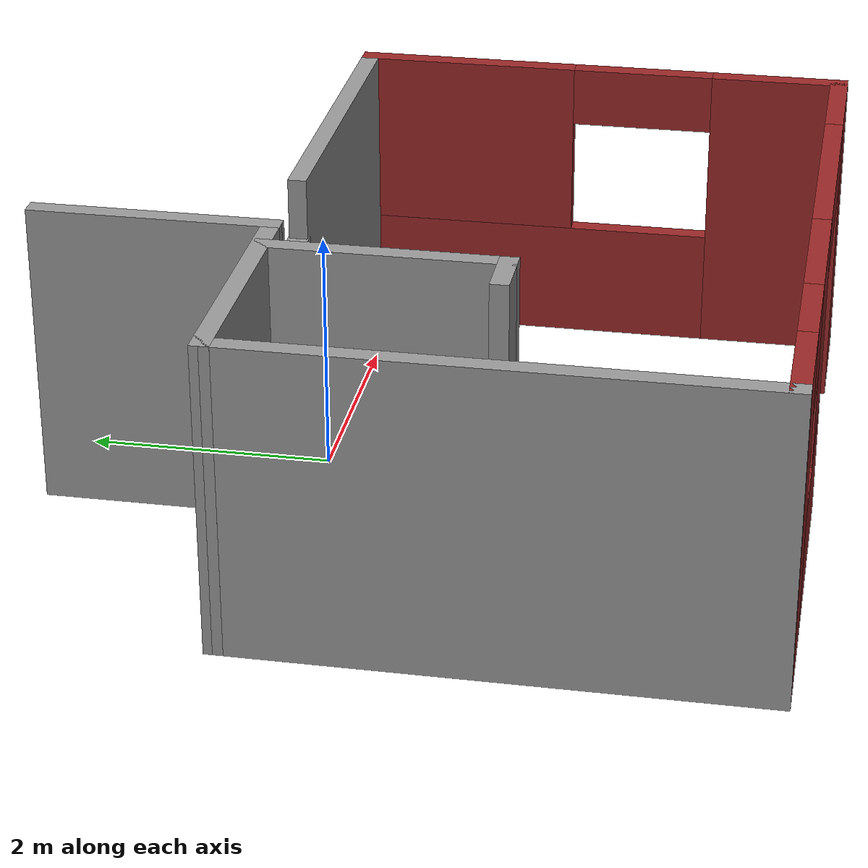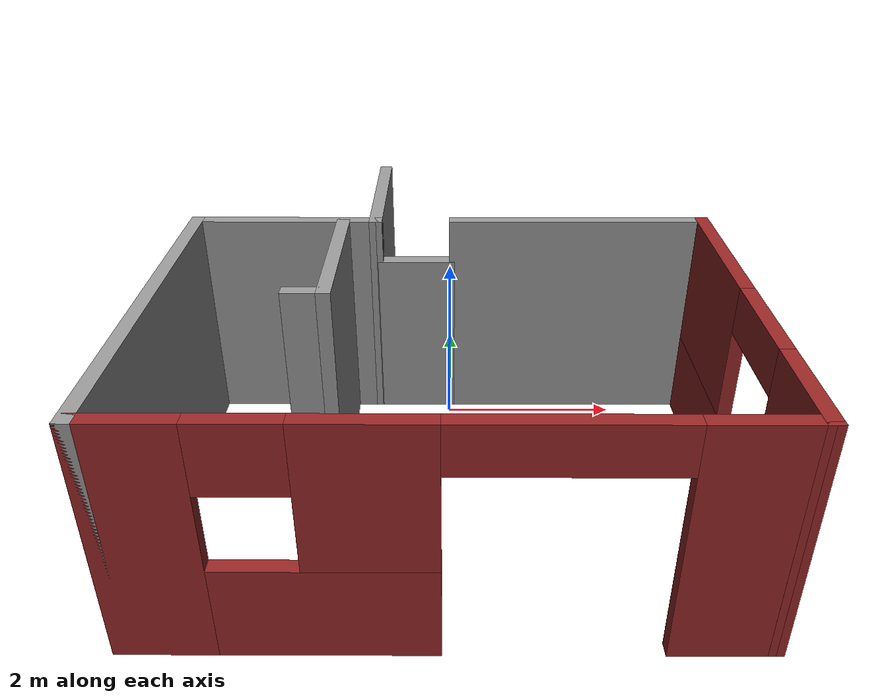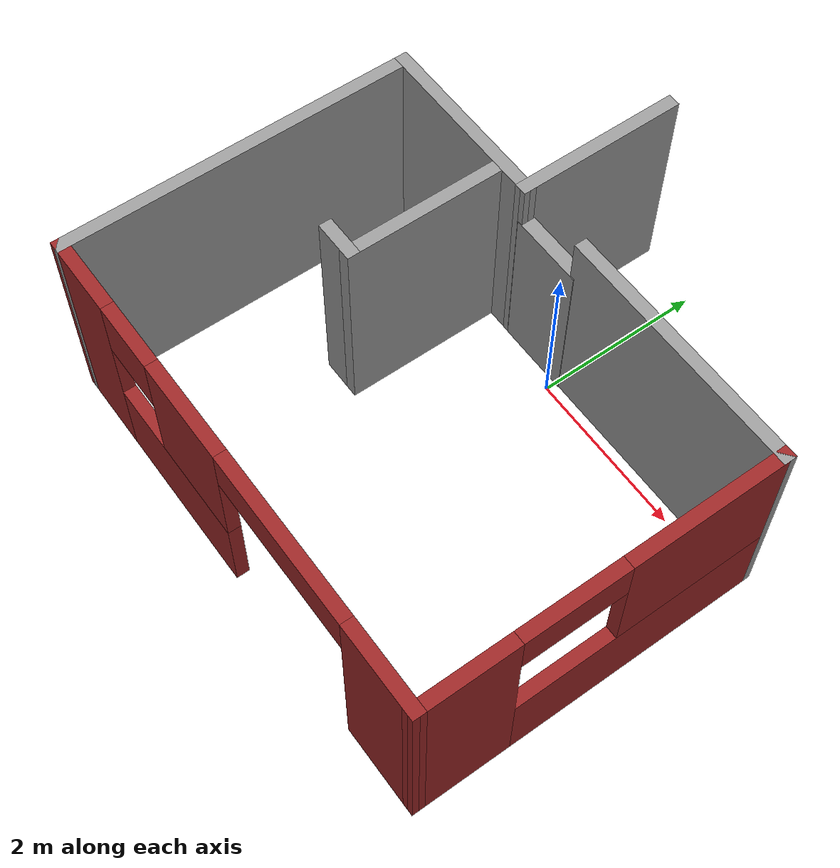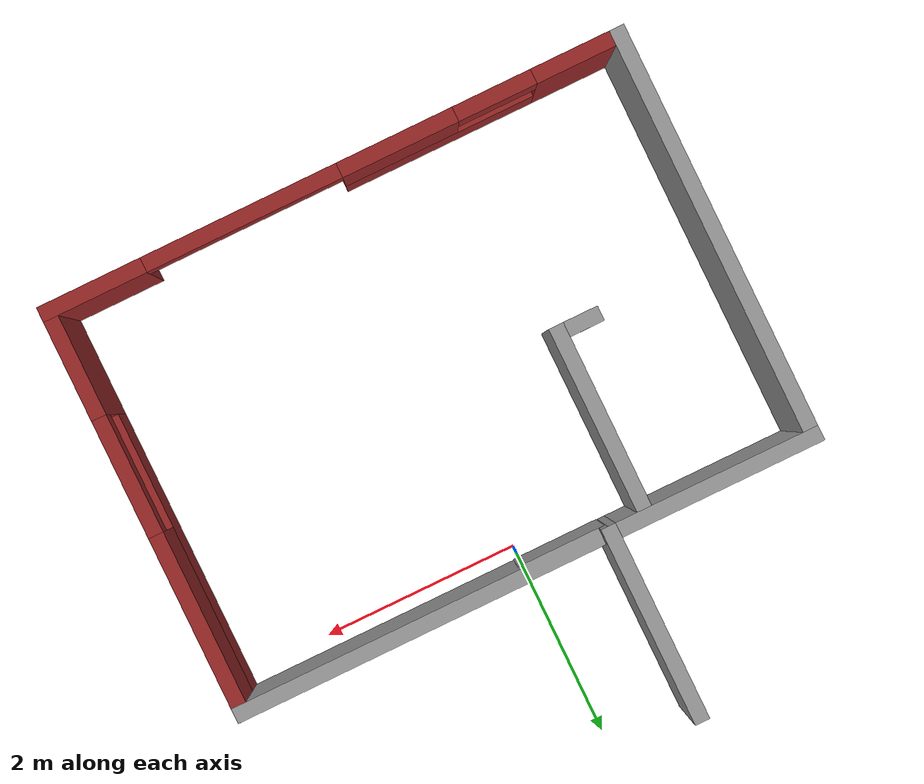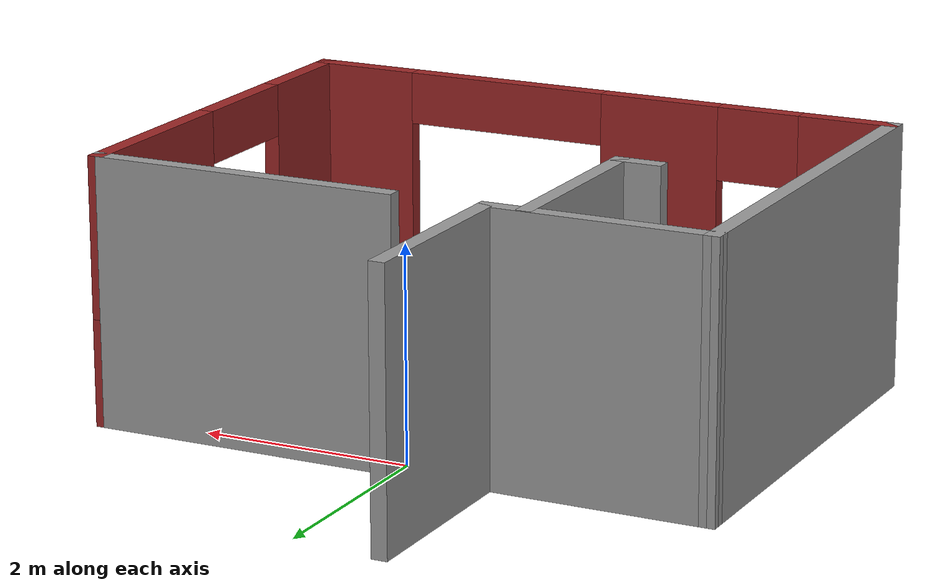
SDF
<sdf version="1.6">
 <model name="myroom">
  <link name="Door_6">
   <pose>-0.397625 0.202673 0 0 -0 0</pose>
   <visual name="Door_6_Visual">
    <pose>0 0 1 0 -0 0</pose>
    <geometry><box><size>0.9 0.17 2</size></box></geometry>
    <material>
     <script><uri>file://media/materials/scripts/gazebo.material</uri><name>Gazebo/Grey</name></script>
     <ambient>0.3 0.3 0.3 1</ambient>
     <diffuse>0.7 0.7 0.7 1</diffuse>
     <specular>0.01 0.01 0.01 1</specular>
     <emissive>0 0 0 1</emissive>
    </material>
   </visual>
   <collision name="Door_6_Collision">
    <pose>0 0 1 0 -0 0</pose>
    <geometry><box><size>0.9 0.17 2</size></box></geometry>
    <surface>
     <friction>
      <ode><mu>1</mu><mu2>1</mu2><fdir1>0 0 0</fdir1><slip1>0</slip1><slip2>0</slip2></ode>
      <torsional>
       <coefficient>1</coefficient>
       <patch_radius>0</patch_radius>
       <surface_radius>0</surface_radius>
       <use_patch_radius>1</use_patch_radius>
       <ode><slip>0</slip></ode>
      </torsional>
     </friction>
     <bounce><restitution_coefficient>0</restitution_coefficient><threshold>1e+06</threshold></bounce>
     <contact>
      <collide_without_contact>0</collide_without_contact>
      <collide_without_contact_bitmask>1</collide_without_contact_bitmask>
      <collide_bitmask>1</collide_bitmask>
      <ode>
       <soft_cfm>0</soft_cfm>
       <soft_erp>0.2</soft_erp>
       <kp>1e+13</kp>
       <kd>1</kd>
       <max_vel>0.01</max_vel>
       <min_depth>0</min_depth>
      </ode>
      <bullet>
       <split_impulse>1</split_impulse>
       <split_impulse_penetration_threshold>-0.01</split_impulse_penetration_threshold>
       <soft_cfm>0</soft_cfm>
       <soft_erp>0.2</soft_erp>
       <kp>1e+13</kp>
       <kd>1</kd>
      </bullet>
     </contact>
    </surface>
   </collision>
  </link>
  <link name="Wall_28">
   <pose>-0.859282 1.12126 0 0 0 -1.5708</pose>
   <visual name="Wall_28_Visual">
    <pose>0 0 1.25 0 -0 0</pose>
    <geometry><box><size>2 0.15 2.5</size></box></geometry>
    <material>
     <script><uri>file://media/materials/scripts/gazebo.material</uri><name>Gazebo/Grey</name></script>
     <ambient>1 1 1 1</ambient>
     <diffuse>0.7 0.7 0.7 1</diffuse>
     <specular>0.01 0.01 0.01 1</specular>
     <emissive>0 0 0 1</emissive>
    </material>
    <meta><layer>0</layer></meta>
   </visual>
   <collision name="Wall_28_Collision">
    <pose>0 0 1.25 0 -0 0</pose>
    <geometry><box><size>2 0.15 2.5</size></box></geometry>
    <surface>
     <friction>
      <ode><mu>1</mu><mu2>1</mu2><fdir1>0 0 0</fdir1><slip1>0</slip1><slip2>0</slip2></ode>
      <torsional>
       <coefficient>1</coefficient>
       <patch_radius>0</patch_radius>
       <surface_radius>0</surface_radius>
       <use_patch_radius>1</use_patch_radius>
       <ode><slip>0</slip></ode>
      </torsional>
     </friction>
     <bounce><restitution_coefficient>0</restitution_coefficient><threshold>1e+06</threshold></bounce>
     <contact>
      <collide_without_contact>0</collide_without_contact>
      <collide_without_contact_bitmask>1</collide_without_contact_bitmask>
      <collide_bitmask>1</collide_bitmask>
      <ode>
       <soft_cfm>0</soft_cfm>
       <soft_erp>0.2</soft_erp>
       <kp>1e+13</kp>
       <kd>1</kd>
       <max_vel>0.01</max_vel>
       <min_depth>0</min_depth>
      </ode>
      <bullet>
       <split_impulse>1</split_impulse>
       <split_impulse_penetration_threshold>-0.01</split_impulse_penetration_threshold>
       <soft_cfm>0</soft_cfm>
       <soft_erp>0.2</soft_erp>
       <kp>1e+13</kp>
       <kd>1</kd>
      </bullet>
     </contact>
    </surface>
   </collision>
  </link>
  <link name="Wall_36">
   <pose>1.49313 0.201483 0 0 -0 3.14159</pose>
   <visual name="Wall_36_Visual">
    <pose>0 0 1.25 0 -0 0</pose>
    <geometry><box><size>3 0.15 2.5</size></box></geometry>
    <material>
     <script><uri>file://media/materials/scripts/gazebo.material</uri><name>Gazebo/Grey</name></script>
     <ambient>1 1 1 1</ambient>
     <diffuse>0.7 0.7 0.7 1</diffuse>
     <specular>0.01 0.01 0.01 1</specular>
     <emissive>0 0 0 1</emissive>
    </material>
    <meta><layer>0</layer></meta>
   </visual>
   <collision name="Wall_36_Collision">
    <pose>0 0 1.25 0 -0 0</pose>
    <geometry><box><size>3 0.15 2.5</size></box></geometry>
    <surface>
     <friction>
      <ode><mu>1</mu><mu2>1</mu2><fdir1>0 0 0</fdir1><slip1>0</slip1><slip2>0</slip2></ode>
      <torsional>
       <coefficient>1</coefficient>
       <patch_radius>0</patch_radius>
       <surface_radius>0</surface_radius>
       <use_patch_radius>1</use_patch_radius>
       <ode><slip>0</slip></ode>
      </torsional>
     </friction>
     <bounce><restitution_coefficient>0</restitution_coefficient><threshold>1e+06</threshold></bounce>
     <contact>
      <collide_without_contact>0</collide_without_contact>
      <collide_without_contact_bitmask>1</collide_without_contact_bitmask>
      <collide_bitmask>1</collide_bitmask>
      <ode>
       <soft_cfm>0</soft_cfm>
       <soft_erp>0.2</soft_erp>
       <kp>1e+13</kp>
       <kd>1</kd>
       <max_vel>0.01</max_vel>
       <min_depth>0</min_depth>
      </ode>
      <bullet>
       <split_impulse>1</split_impulse>
       <split_impulse_penetration_threshold>-0.01</split_impulse_penetration_threshold>
       <soft_cfm>0</soft_cfm>
       <soft_erp>0.2</soft_erp>
       <kp>1e+13</kp>
       <kd>1</kd>
      </bullet>
     </contact>
    </surface>
   </collision>
  </link>
  <link name="Wall_42">
   <pose>-1.89215 0.197452 0 0 0 -0.001151</pose>
   <visual name="Wall_42_Visual">
    <pose>0 0 1.25 0 -0 0</pose>
    <geometry><box><size>2.21574 0.15 2.5</size></box></geometry>
    <material>
     <script><uri>file://media/materials/scripts/gazebo.material</uri><name>Gazebo/Grey</name></script>
     <ambient>1 1 1 1</ambient>
     <diffuse>0.7 0.7 0.7 1</diffuse>
     <specular>0.01 0.01 0.01 1</specular>
     <emissive>0 0 0 1</emissive>
    </material>
    <meta><layer>0</layer></meta>
   </visual>
   <collision name="Wall_42_Collision">
    <pose>0 0 1.25 0 -0 0</pose>
    <geometry><box><size>2.21574 0.15 2.5</size></box></geometry>
    <surface>
     <friction>
      <ode><mu>1</mu><mu2>1</mu2><fdir1>0 0 0</fdir1><slip1>0</slip1><slip2>0</slip2></ode>
      <torsional>
       <coefficient>1</coefficient>
       <patch_radius>0</patch_radius>
       <surface_radius>0</surface_radius>
       <use_patch_radius>1</use_patch_radius>
       <ode><slip>0</slip></ode>
      </torsional>
     </friction>
     <bounce><restitution_coefficient>0</restitution_coefficient><threshold>1e+06</threshold></bounce>
     <contact>
      <collide_without_contact>0</collide_without_contact>
      <collide_without_contact_bitmask>1</collide_without_contact_bitmask>
      <collide_bitmask>1</collide_bitmask>
      <ode>
       <soft_cfm>0</soft_cfm>
       <soft_erp>0.2</soft_erp>
       <kp>1e+13</kp>
       <kd>1</kd>
       <max_vel>0.01</max_vel>
       <min_depth>0</min_depth>
      </ode>
      <bullet>
       <split_impulse>1</split_impulse>
       <split_impulse_penetration_threshold>-0.01</split_impulse_penetration_threshold>
       <soft_cfm>0</soft_cfm>
       <soft_erp>0.2</soft_erp>
       <kp>1e+13</kp>
       <kd>1</kd>
      </bullet>
     </contact>
    </surface>
   </collision>
  </link>
  <link name="Wall_44">
   <pose>-2.92502 -1.85136 0 0 0 -1.5708</pose>
   <visual name="Wall_44_Visual">
    <pose>0 0 1.25 0 -0 0</pose>
    <geometry><box><size>4.25 0.15 2.5</size></box></geometry>
    <material>
     <script><uri>file://media/materials/scripts/gazebo.material</uri><name>Gazebo/Grey</name></script>
     <ambient>1 1 1 1</ambient>
     <diffuse>0.7 0.7 0.7 1</diffuse>
     <specular>0.01 0.01 0.01 1</specular>
     <emissive>0 0 0 1</emissive>
    </material>
    <meta><layer>0</layer></meta>
   </visual>
   <collision name="Wall_44_Collision">
    <pose>0 0 1.25 0 -0 0</pose>
    <geometry><box><size>4.25 0.15 2.5</size></box></geometry>
    <surface>
     <friction>
      <ode><mu>1</mu><mu2>1</mu2><fdir1>0 0 0</fdir1><slip1>0</slip1><slip2>0</slip2></ode>
      <torsional>
       <coefficient>1</coefficient>
       <patch_radius>0</patch_radius>
       <surface_radius>0</surface_radius>
       <use_patch_radius>1</use_patch_radius>
       <ode><slip>0</slip></ode>
      </torsional>
     </friction>
     <bounce><restitution_coefficient>0</restitution_coefficient><threshold>1e+06</threshold></bounce>
     <contact>
      <collide_without_contact>0</collide_without_contact>
      <collide_without_contact_bitmask>1</collide_without_contact_bitmask>
      <collide_bitmask>1</collide_bitmask>
      <ode>
       <soft_cfm>0</soft_cfm>
       <soft_erp>0.2</soft_erp>
       <kp>1e+13</kp>
       <kd>1</kd>
       <max_vel>0.01</max_vel>
       <min_depth>0</min_depth>
      </ode>
      <bullet>
       <split_impulse>1</split_impulse>
       <split_impulse_penetration_threshold>-0.01</split_impulse_penetration_threshold>
       <soft_cfm>0</soft_cfm>
       <soft_erp>0.2</soft_erp>
       <kp>1e+13</kp>
       <kd>1</kd>
      </bullet>
     </contact>
    </surface>
   </collision>
  </link>
  <link name="Wall_45">
   <pose>-1.9e-05 -3.90136 0 0 -0 0</pose>
   <inertial>
    <mass>1</mass>
    <inertia><ixx>1</ixx><ixy>0</ixy><ixz>0</ixz><iyy>1</iyy><iyz>0</iyz><izz>1</izz></inertia>
   </inertial>
   <visual name="Wall_45_Visual_0">
    <pose>-2.52182 0 1.25 0 -0 0</pose>
    <geometry><box><size>0.956354 0.15 2.5</size></box></geometry>
    <material>
     <script><uri>file://media/materials/scripts/gazebo.material</uri><name>Gazebo/Grey</name></script>
     <ambient>0.6 0.15 0.15 1</ambient>
     <diffuse>0.7 0.7 0.7 1</diffuse>
     <specular>0.01 0.01 0.01 1</specular>
     <emissive>0 0 0 1</emissive>
     <shader type="vertex"><normal_map>__default__</normal_map></shader>
    </material>
    <meta><layer>0</layer></meta>
   </visual>
   <visual name="Wall_45_Visual_1">
    <pose>2.47118 0 1.25 0 -0 0</pose>
    <geometry><box><size>1.05764 0.15 2.5</size></box></geometry>
    <material>
     <script><uri>file://media/materials/scripts/gazebo.material</uri><name>Gazebo/Grey</name></script>
     <ambient>0.6 0.15 0.15 1</ambient>
     <diffuse>0.7 0.7 0.7 1</diffuse>
     <specular>0.01 0.01 0.01 1</specular>
     <emissive>0 0 0 1</emissive>
     <shader type="vertex"><normal_map>__default__</normal_map></shader>
    </material>
    <meta><layer>0</layer></meta>
   </visual>
   <visual name="Wall_45_Visual_2">
    <pose>-1.05064 0 0.5 0 -0 0</pose>
    <geometry><box><size>1.98601 0.15 1</size></box></geometry>
    <material>
     <script><uri>file://media/materials/scripts/gazebo.material</uri><name>Gazebo/Grey</name></script>
     <ambient>0.6 0.15 0.15 1</ambient>
     <diffuse>0.7 0.7 0.7 1</diffuse>
     <specular>0.01 0.01 0.01 1</specular>
     <emissive>0 0 0 1</emissive>
     <shader type="vertex"><normal_map>__default__</normal_map></shader>
    </material>
    <meta><layer>0</layer></meta>
   </visual>
   <visual name="Wall_45_Visual_3">
    <pose>-0.650641 0 1.75 0 -0 0</pose>
    <geometry><box><size>1.18601 0.15 1.5</size></box></geometry>
    <material>
     <script><uri>file://media/materials/scripts/gazebo.material</uri><name>Gazebo/Grey</name></script>
     <ambient>0.6 0.15 0.15 1</ambient>
     <diffuse>0.7 0.7 0.7 1</diffuse>
     <specular>0.01 0.01 0.01 1</specular>
     <emissive>0 0 0 1</emissive>
     <shader type="vertex"><normal_map>__default__</normal_map></shader>
    </material>
    <meta><layer>0</layer></meta>
   </visual>
   <visual name="Wall_45_Visual_4">
    <pose>-1.64365 0 2.15 0 -0 0</pose>
    <geometry><box><size>0.8 0.15 0.7</size></box></geometry>
    <material>
     <script><uri>file://media/materials/scripts/gazebo.material</uri><name>Gazebo/Grey</name></script>
     <ambient>0.6 0.15 0.15 1</ambient>
     <diffuse>0.7 0.7 0.7 1</diffuse>
     <specular>0.01 0.01 0.01 1</specular>
     <emissive>0 0 0 1</emissive>
     <shader type="vertex"><normal_map>__default__</normal_map></shader>
    </material>
    <meta><layer>0</layer></meta>
   </visual>
   <visual name="Wall_45_Visual_5">
    <pose>0.942365 0 2.25 0 -0 0</pose>
    <geometry><box><size>2 0.15 0.5</size></box></geometry>
    <material>
     <script><uri>file://media/materials/scripts/gazebo.material</uri><name>Gazebo/Grey</name></script>
     <ambient>0.6 0.15 0.15 1</ambient>
     <diffuse>0.7 0.7 0.7 1</diffuse>
     <specular>0.01 0.01 0.01 1</specular>
     <emissive>0 0 0 1</emissive>
     <shader type="vertex"><normal_map>__default__</normal_map></shader>
    </material>
    <meta><layer>0</layer></meta>
   </visual>
   <collision name="Wall_45_Collision_0">
    <pose>-2.52182 0 1.25 0 -0 0</pose>
    <geometry><box><size>0.956354 0.15 2.5</size></box></geometry>
    <surface>
     <friction>
      <ode><mu>1</mu><mu2>1</mu2><fdir1>0 0 0</fdir1><slip1>0</slip1><slip2>0</slip2></ode>
      <torsional>
       <coefficient>1</coefficient>
       <patch_radius>0</patch_radius>
       <surface_radius>0</surface_radius>
       <use_patch_radius>1</use_patch_radius>
       <ode><slip>0</slip></ode>
      </torsional>
     </friction>
     <bounce><restitution_coefficient>0</restitution_coefficient><threshold>1e+06</threshold></bounce>
     <contact>
      <collide_without_contact>0</collide_without_contact>
      <collide_without_contact_bitmask>1</collide_without_contact_bitmask>
      <collide_bitmask>1</collide_bitmask>
      <ode>
       <soft_cfm>0</soft_cfm>
       <soft_erp>0.2</soft_erp>
       <kp>1e+13</kp>
       <kd>1</kd>
       <max_vel>0.01</max_vel>
       <min_depth>0</min_depth>
      </ode>
      <bullet>
       <split_impulse>1</split_impulse>
       <split_impulse_penetration_threshold>-0.01</split_impulse_penetration_threshold>
       <soft_cfm>0</soft_cfm>
       <soft_erp>0.2</soft_erp>
       <kp>1e+13</kp>
       <kd>1</kd>
      </bullet>
     </contact>
    </surface>
   </collision>
   <collision name="Wall_45_Collision_1">
    <pose>2.47118 0 1.25 0 -0 0</pose>
    <geometry><box><size>1.05764 0.15 2.5</size></box></geometry>
    <surface>
     <friction>
      <ode><mu>1</mu><mu2>1</mu2><fdir1>0 0 0</fdir1><slip1>0</slip1><slip2>0</slip2></ode>
      <torsional>
       <coefficient>1</coefficient>
       <patch_radius>0</patch_radius>
       <surface_radius>0</surface_radius>
       <use_patch_radius>1</use_patch_radius>
       <ode><slip>0</slip></ode>
      </torsional>
     </friction>
     <bounce><restitution_coefficient>0</restitution_coefficient><threshold>1e+06</threshold></bounce>
     <contact>
      <collide_without_contact>0</collide_without_contact>
      <collide_without_contact_bitmask>1</collide_without_contact_bitmask>
      <collide_bitmask>1</collide_bitmask>
      <ode>
       <soft_cfm>0</soft_cfm>
       <soft_erp>0.2</soft_erp>
       <kp>1e+13</kp>
       <kd>1</kd>
       <max_vel>0.01</max_vel>
       <min_depth>0</min_depth>
      </ode>
      <bullet>
       <split_impulse>1</split_impulse>
       <split_impulse_penetration_threshold>-0.01</split_impulse_penetration_threshold>
       <soft_cfm>0</soft_cfm>
       <soft_erp>0.2</soft_erp>
       <kp>1e+13</kp>
       <kd>1</kd>
      </bullet>
     </contact>
    </surface>
   </collision>
   <collision name="Wall_45_Collision_3">
    <pose>-0.650641 0 1.75 0 -0 0</pose>
    <geometry><box><size>1.18601 0.15 1.5</size></box></geometry>
    <surface>
     <friction>
      <ode><mu>1</mu><mu2>1</mu2><fdir1>0 0 0</fdir1><slip1>0</slip1><slip2>0</slip2></ode>
      <torsional>
       <coefficient>1</coefficient>
       <patch_radius>0</patch_radius>
       <surface_radius>0</surface_radius>
       <use_patch_radius>1</use_patch_radius>
       <ode><slip>0</slip></ode>
      </torsional>
     </friction>
     <bounce><restitution_coefficient>0</restitution_coefficient><threshold>1e+06</threshold></bounce>
     <contact>
      <collide_without_contact>0</collide_without_contact>
      <collide_without_contact_bitmask>1</collide_without_contact_bitmask>
      <collide_bitmask>1</collide_bitmask>
      <ode>
       <soft_cfm>0</soft_cfm>
       <soft_erp>0.2</soft_erp>
       <kp>1e+13</kp>
       <kd>1</kd>
       <max_vel>0.01</max_vel>
       <min_depth>0</min_depth>
      </ode>
      <bullet>
       <split_impulse>1</split_impulse>
       <split_impulse_penetration_threshold>-0.01</split_impulse_penetration_threshold>
       <soft_cfm>0</soft_cfm>
       <soft_erp>0.2</soft_erp>
       <kp>1e+13</kp>
       <kd>1</kd>
      </bullet>
     </contact>
    </surface>
   </collision>
   <collision name="Wall_45_Collision_2">
    <pose>-1.05064 0 0.5 0 -0 0</pose>
    <geometry><box><size>1.98601 0.15 1</size></box></geometry>
    <surface>
     <friction>
      <ode><mu>1</mu><mu2>1</mu2><fdir1>0 0 0</fdir1><slip1>0</slip1><slip2>0</slip2></ode>
      <torsional>
       <coefficient>1</coefficient>
       <patch_radius>0</patch_radius>
       <surface_radius>0</surface_radius>
       <use_patch_radius>1</use_patch_radius>
       <ode><slip>0</slip></ode>
      </torsional>
     </friction>
     <bounce><restitution_coefficient>0</restitution_coefficient><threshold>1e+06</threshold></bounce>
     <contact>
      <collide_without_contact>0</collide_without_contact>
      <collide_without_contact_bitmask>1</collide_without_contact_bitmask>
      <collide_bitmask>1</collide_bitmask>
      <ode>
       <soft_cfm>0</soft_cfm>
       <soft_erp>0.2</soft_erp>
       <kp>1e+13</kp>
       <kd>1</kd>
       <max_vel>0.01</max_vel>
       <min_depth>0</min_depth>
      </ode>
      <bullet>
       <split_impulse>1</split_impulse>
       <split_impulse_penetration_threshold>-0.01</split_impulse_penetration_threshold>
       <soft_cfm>0</soft_cfm>
       <soft_erp>0.2</soft_erp>
       <kp>1e+13</kp>
       <kd>1</kd>
      </bullet>
     </contact>
    </surface>
   </collision>
   <collision name="Wall_45_Collision_4">
    <pose>-1.64365 0 2.15 0 -0 0</pose>
    <geometry><box><size>0.8 0.15 0.7</size></box></geometry>
    <surface>
     <friction>
      <ode><mu>1</mu><mu2>1</mu2><fdir1>0 0 0</fdir1><slip1>0</slip1><slip2>0</slip2></ode>
      <torsional>
       <coefficient>1</coefficient>
       <patch_radius>0</patch_radius>
       <surface_radius>0</surface_radius>
       <use_patch_radius>1</use_patch_radius>
       <ode><slip>0</slip></ode>
      </torsional>
     </friction>
     <bounce><restitution_coefficient>0</restitution_coefficient><threshold>1e+06</threshold></bounce>
     <contact>
      <collide_without_contact>0</collide_without_contact>
      <collide_without_contact_bitmask>1</collide_without_contact_bitmask>
      <collide_bitmask>1</collide_bitmask>
      <ode>
       <soft_cfm>0</soft_cfm>
       <soft_erp>0.2</soft_erp>
       <kp>1e+13</kp>
       <kd>1</kd>
       <max_vel>0.01</max_vel>
       <min_depth>0</min_depth>
      </ode>
      <bullet>
       <split_impulse>1</split_impulse>
       <split_impulse_penetration_threshold>-0.01</split_impulse_penetration_threshold>
       <soft_cfm>0</soft_cfm>
       <soft_erp>0.2</soft_erp>
       <kp>1e+13</kp>
       <kd>1</kd>
      </bullet>
     </contact>
    </surface>
   </collision>
   <collision name="Wall_45_Collision_5">
    <pose>0.942365 0 2.25 0 -0 0</pose>
    <geometry><box><size>2 0.15 0.5</size></box></geometry>
    <surface>
     <friction>
      <ode><mu>1</mu><mu2>1</mu2><fdir1>0 0 0</fdir1><slip1>0</slip1><slip2>0</slip2></ode>
      <torsional>
       <coefficient>1</coefficient>
       <patch_radius>0</patch_radius>
       <surface_radius>0</surface_radius>
       <use_patch_radius>1</use_patch_radius>
       <ode><slip>0</slip></ode>
      </torsional>
     </friction>
     <bounce><restitution_coefficient>0</restitution_coefficient><threshold>1e+06</threshold></bounce>
     <contact>
      <collide_without_contact>0</collide_without_contact>
      <collide_without_contact_bitmask>1</collide_without_contact_bitmask>
      <collide_bitmask>1</collide_bitmask>
      <ode>
       <soft_cfm>0</soft_cfm>
       <soft_erp>0.2</soft_erp>
       <kp>1e+13</kp>
       <kd>1</kd>
       <max_vel>0.01</max_vel>
       <min_depth>0</min_depth>
      </ode>
      <bullet>
       <split_impulse>1</split_impulse>
       <split_impulse_penetration_threshold>-0.01</split_impulse_penetration_threshold>
       <soft_cfm>0</soft_cfm>
       <soft_erp>0.2</soft_erp>
       <kp>1e+13</kp>
       <kd>1</kd>
      </bullet>
     </contact>
    </surface>
   </collision>
  </link>
  <link name="Wall_46">
   <pose>2.92155 -1.84994 0 0 -0 1.57247</pose>
   <inertial>
    <mass>1</mass>
    <inertia><ixx>1</ixx><ixy>0</ixy><ixz>0</ixz><iyy>1</iyy><iyz>0</iyz><izz>1</izz></inertia>
   </inertial>
   <visual name="Wall_46_Visual_0">
    <pose>-1.54533 0 1.25 0 -0 0</pose>
    <geometry><box><size>1.16218 0.15 2.5</size></box></geometry>
    <material>
     <script><uri>file://media/materials/scripts/gazebo.material</uri><name>Gazebo/Grey</name></script>
     <ambient>0.6 0.15 0.15 1</ambient>
     <diffuse>0.7 0.7 0.7 1</diffuse>
     <specular>0.01 0.01 0.01 1</specular>
     <emissive>0 0 0 1</emissive>
     <shader type="vertex"><normal_map>__default__</normal_map></shader>
    </material>
    <meta><layer>0</layer></meta>
   </visual>
   <visual name="Wall_46_Visual_1">
    <pose>0.581092 0 0.5 0 -0 0</pose>
    <geometry><box><size>3.09066 0.15 1</size></box></geometry>
    <material>
     <script><uri>file://media/materials/scripts/gazebo.material</uri><name>Gazebo/Grey</name></script>
     <ambient>0.6 0.15 0.15 1</ambient>
     <diffuse>0.7 0.7 0.7 1</diffuse>
     <specular>0.01 0.01 0.01 1</specular>
     <emissive>0 0 0 1</emissive>
     <shader type="vertex"><normal_map>__default__</normal_map></shader>
    </material>
    <meta><layer>0</layer></meta>
   </visual>
   <visual name="Wall_46_Visual_2">
    <pose>1.18109 0 1.75 0 -0 0</pose>
    <geometry><box><size>1.89066 0.15 1.5</size></box></geometry>
    <material>
     <script><uri>file://media/materials/scripts/gazebo.material</uri><name>Gazebo/Grey</name></script>
     <ambient>0.6 0.15 0.15 1</ambient>
     <diffuse>0.7 0.7 0.7 1</diffuse>
     <specular>0.01 0.01 0.01 1</specular>
     <emissive>0 0 0 1</emissive>
     <shader type="vertex"><normal_map>__default__</normal_map></shader>
    </material>
    <meta><layer>0</layer></meta>
   </visual>
   <visual name="Wall_46_Visual_3">
    <pose>-0.36424 0 2.25 0 -0 0</pose>
    <geometry><box><size>1.2 0.15 0.5</size></box></geometry>
    <material>
     <script><uri>file://media/materials/scripts/gazebo.material</uri><name>Gazebo/Grey</name></script>
     <ambient>0.6 0.15 0.15 1</ambient>
     <diffuse>0.7 0.7 0.7 1</diffuse>
     <specular>0.01 0.01 0.01 1</specular>
     <emissive>0 0 0 1</emissive>
     <shader type="vertex"><normal_map>__default__</normal_map></shader>
    </material>
    <meta><layer>0</layer></meta>
   </visual>
   <collision name="Wall_46_Collision_0">
    <pose>-1.54533 0 1.25 0 -0 0</pose>
    <geometry><box><size>1.16218 0.15 2.5</size></box></geometry>
    <surface>
     <friction>
      <ode><mu>1</mu><mu2>1</mu2><fdir1>0 0 0</fdir1><slip1>0</slip1><slip2>0</slip2></ode>
      <torsional>
       <coefficient>1</coefficient>
       <patch_radius>0</patch_radius>
       <surface_radius>0</surface_radius>
       <use_patch_radius>1</use_patch_radius>
       <ode><slip>0</slip></ode>
      </torsional>
     </friction>
     <bounce><restitution_coefficient>0</restitution_coefficient><threshold>1e+06</threshold></bounce>
     <contact>
      <collide_without_contact>0</collide_without_contact>
      <collide_without_contact_bitmask>1</collide_without_contact_bitmask>
      <collide_bitmask>1</collide_bitmask>
      <ode>
       <soft_cfm>0</soft_cfm>
       <soft_erp>0.2</soft_erp>
       <kp>1e+13</kp>
       <kd>1</kd>
       <max_vel>0.01</max_vel>
       <min_depth>0</min_depth>
      </ode>
      <bullet>
       <split_impulse>1</split_impulse>
       <split_impulse_penetration_threshold>-0.01</split_impulse_penetration_threshold>
       <soft_cfm>0</soft_cfm>
       <soft_erp>0.2</soft_erp>
       <kp>1e+13</kp>
       <kd>1</kd>
      </bullet>
     </contact>
    </surface>
   </collision>
   <collision name="Wall_46_Collision_3">
    <pose>-0.36424 0 2.25 0 -0 0</pose>
    <geometry><box><size>1.2 0.15 0.5</size></box></geometry>
    <surface>
     <friction>
      <ode><mu>1</mu><mu2>1</mu2><fdir1>0 0 0</fdir1><slip1>0</slip1><slip2>0</slip2></ode>
      <torsional>
       <coefficient>1</coefficient>
       <patch_radius>0</patch_radius>
       <surface_radius>0</surface_radius>
       <use_patch_radius>1</use_patch_radius>
       <ode><slip>0</slip></ode>
      </torsional>
     </friction>
     <bounce><restitution_coefficient>0</restitution_coefficient><threshold>1e+06</threshold></bounce>
     <contact>
      <collide_without_contact>0</collide_without_contact>
      <collide_without_contact_bitmask>1</collide_without_contact_bitmask>
      <collide_bitmask>1</collide_bitmask>
      <ode>
       <soft_cfm>0</soft_cfm>
       <soft_erp>0.2</soft_erp>
       <kp>1e+13</kp>
       <kd>1</kd>
       <max_vel>0.01</max_vel>
       <min_depth>0</min_depth>
      </ode>
      <bullet>
       <split_impulse>1</split_impulse>
       <split_impulse_penetration_threshold>-0.01</split_impulse_penetration_threshold>
       <soft_cfm>0</soft_cfm>
       <soft_erp>0.2</soft_erp>
       <kp>1e+13</kp>
       <kd>1</kd>
      </bullet>
     </contact>
    </surface>
   </collision>
   <collision name="Wall_46_Collision_1">
    <pose>0.581092 0 0.5 0 -0 0</pose>
    <geometry><box><size>3.09066 0.15 1</size></box></geometry>
    <surface>
     <friction>
      <ode><mu>1</mu><mu2>1</mu2><fdir1>0 0 0</fdir1><slip1>0</slip1><slip2>0</slip2></ode>
      <torsional>
       <coefficient>1</coefficient>
       <patch_radius>0</patch_radius>
       <surface_radius>0</surface_radius>
       <use_patch_radius>1</use_patch_radius>
       <ode><slip>0</slip></ode>
      </torsional>
     </friction>
     <bounce><restitution_coefficient>0</restitution_coefficient><threshold>1e+06</threshold></bounce>
     <contact>
      <collide_without_contact>0</collide_without_contact>
      <collide_without_contact_bitmask>1</collide_without_contact_bitmask>
      <collide_bitmask>1</collide_bitmask>
      <ode>
       <soft_cfm>0</soft_cfm>
       <soft_erp>0.2</soft_erp>
       <kp>1e+13</kp>
       <kd>1</kd>
       <max_vel>0.01</max_vel>
       <min_depth>0</min_depth>
      </ode>
      <bullet>
       <split_impulse>1</split_impulse>
       <split_impulse_penetration_threshold>-0.01</split_impulse_penetration_threshold>
       <soft_cfm>0</soft_cfm>
       <soft_erp>0.2</soft_erp>
       <kp>1e+13</kp>
       <kd>1</kd>
      </bullet>
     </contact>
    </surface>
   </collision>
   <collision name="Wall_46_Collision_2">
    <pose>1.18109 0 1.75 0 -0 0</pose>
    <geometry><box><size>1.89066 0.15 1.5</size></box></geometry>
    <surface>
     <friction>
      <ode><mu>1</mu><mu2>1</mu2><fdir1>0 0 0</fdir1><slip1>0</slip1><slip2>0</slip2></ode>
      <torsional>
       <coefficient>1</coefficient>
       <patch_radius>0</patch_radius>
       <surface_radius>0</surface_radius>
       <use_patch_radius>1</use_patch_radius>
       <ode><slip>0</slip></ode>
      </torsional>
     </friction>
     <bounce><restitution_coefficient>0</restitution_coefficient><threshold>1e+06</threshold></bounce>
     <contact>
      <collide_without_contact>0</collide_without_contact>
      <collide_without_contact_bitmask>1</collide_without_contact_bitmask>
      <collide_bitmask>1</collide_bitmask>
      <ode>
       <soft_cfm>0</soft_cfm>
       <soft_erp>0.2</soft_erp>
       <kp>1e+13</kp>
       <kd>1</kd>
       <max_vel>0.01</max_vel>
       <min_depth>0</min_depth>
      </ode>
      <bullet>
       <split_impulse>1</split_impulse>
       <split_impulse_penetration_threshold>-0.01</split_impulse_penetration_threshold>
       <soft_cfm>0</soft_cfm>
       <soft_erp>0.2</soft_erp>
       <kp>1e+13</kp>
       <kd>1</kd>
      </bullet>
     </contact>
    </surface>
   </collision>
  </link>
  <link name="Wall_50">
   <pose>-1.22926 -0.748345 0 0 0 -1.5708</pose>
   <visual name="Wall_50_Visual">
    <pose>0 0 1.25 0 -0 0</pose>
    <geometry><box><size>2 0.15 2.5</size></box></geometry>
    <material>
     <script><uri>file://media/materials/scripts/gazebo.material</uri><name>Gazebo/Grey</name></script>
     <ambient>1 1 1 1</ambient>
     <diffuse>0.7 0.7 0.7 1</diffuse>
     <specular>0.01 0.01 0.01 1</specular>
     <emissive>0 0 0 1</emissive>
    </material>
    <meta><layer>0</layer></meta>
   </visual>
   <collision name="Wall_50_Collision">
    <pose>0 0 1.25 0 -0 0</pose>
    <geometry><box><size>2 0.15 2.5</size></box></geometry>
    <surface>
     <friction>
      <ode><mu>1</mu><mu2>1</mu2><fdir1>0 0 0</fdir1><slip1>0</slip1><slip2>0</slip2></ode>
      <torsional>
       <coefficient>1</coefficient>
       <patch_radius>0</patch_radius>
       <surface_radius>0</surface_radius>
       <use_patch_radius>1</use_patch_radius>
       <ode><slip>0</slip></ode>
      </torsional>
     </friction>
     <bounce><restitution_coefficient>0</restitution_coefficient><threshold>1e+06</threshold></bounce>
     <contact>
      <collide_without_contact>0</collide_without_contact>
      <collide_without_contact_bitmask>1</collide_without_contact_bitmask>
      <collide_bitmask>1</collide_bitmask>
      <ode>
       <soft_cfm>0</soft_cfm>
       <soft_erp>0.2</soft_erp>
       <kp>1e+13</kp>
       <kd>1</kd>
       <max_vel>0.01</max_vel>
       <min_depth>0</min_depth>
      </ode>
      <bullet>
       <split_impulse>1</split_impulse>
       <split_impulse_penetration_threshold>-0.01</split_impulse_penetration_threshold>
       <soft_cfm>0</soft_cfm>
       <soft_erp>0.2</soft_erp>
       <kp>1e+13</kp>
       <kd>1</kd>
      </bullet>
     </contact>
    </surface>
   </collision>
  </link>
  <link name="Wall_51">
   <pose>-1.40427 -1.67334 0 0 -0 3.14159</pose>
   <visual name="Wall_51_Visual">
    <pose>0 0 1.25 0 -0 0</pose>
    <geometry><box><size>0.5 0.15 2.5</size></box></geometry>
    <material>
     <script><uri>file://media/materials/scripts/gazebo.material</uri><name>Gazebo/Grey</name></script>
     <ambient>1 1 1 1</ambient>
     <diffuse>0.7 0.7 0.7 1</diffuse>
     <specular>0.01 0.01 0.01 1</specular>
     <emissive>0 0 0 1</emissive>
    </material>
    <meta><layer>0</layer></meta>
   </visual>
   <collision name="Wall_51_Collision">
    <pose>0 0 1.25 0 -0 0</pose>
    <geometry><box><size>0.5 0.15 2.5</size></box></geometry>
    <surface>
     <friction>
      <ode><mu>1</mu><mu2>1</mu2><fdir1>0 0 0</fdir1><slip1>0</slip1><slip2>0</slip2></ode>
      <torsional>
       <coefficient>1</coefficient>
       <patch_radius>0</patch_radius>
       <surface_radius>0</surface_radius>
       <use_patch_radius>1</use_patch_radius>
       <ode><slip>0</slip></ode>
      </torsional>
     </friction>
     <bounce><restitution_coefficient>0</restitution_coefficient><threshold>1e+06</threshold></bounce>
     <contact>
      <collide_without_contact>0</collide_without_contact>
      <collide_without_contact_bitmask>1</collide_without_contact_bitmask>
      <collide_bitmask>1</collide_bitmask>
      <ode>
       <soft_cfm>0</soft_cfm>
       <soft_erp>0.2</soft_erp>
       <kp>1e+13</kp>
       <kd>1</kd>
       <max_vel>0.01</max_vel>
       <min_depth>0</min_depth>
      </ode>
      <bullet>
       <split_impulse>1</split_impulse>
       <split_impulse_penetration_threshold>-0.01</split_impulse_penetration_threshold>
       <soft_cfm>0</soft_cfm>
       <soft_erp>0.2</soft_erp>
       <kp>1e+13</kp>
       <kd>1</kd>
      </bullet>
     </contact>
    </surface>
   </collision>
  </link>
  <static>1</static>
 </model>
</sdf>
